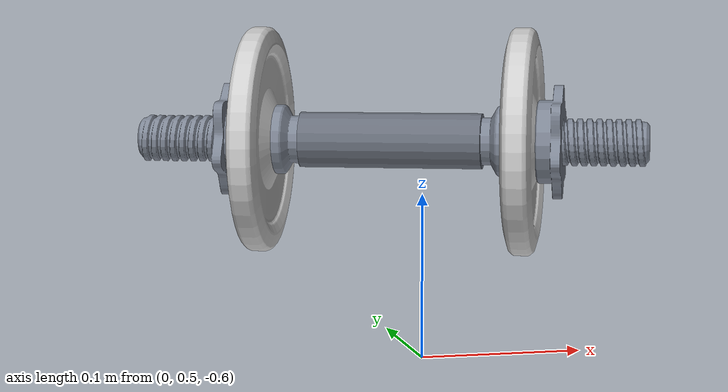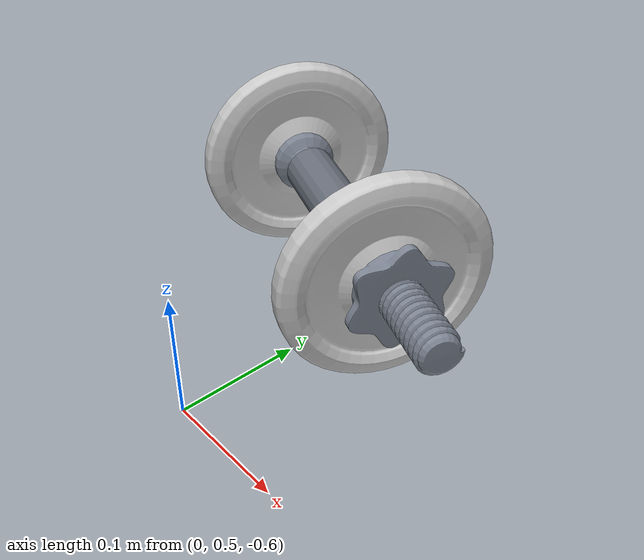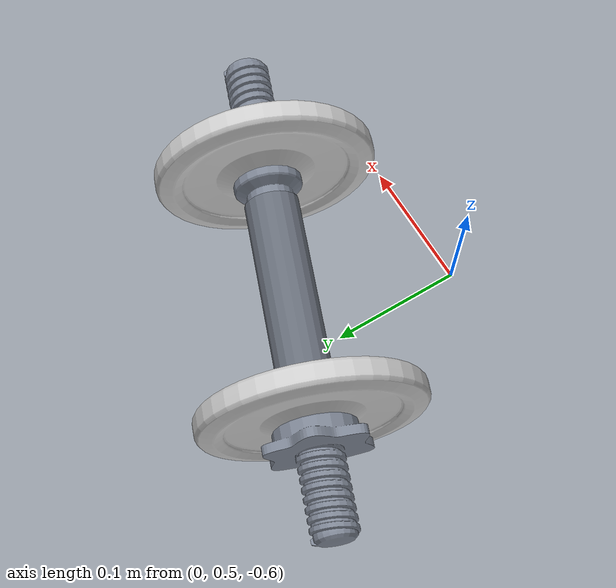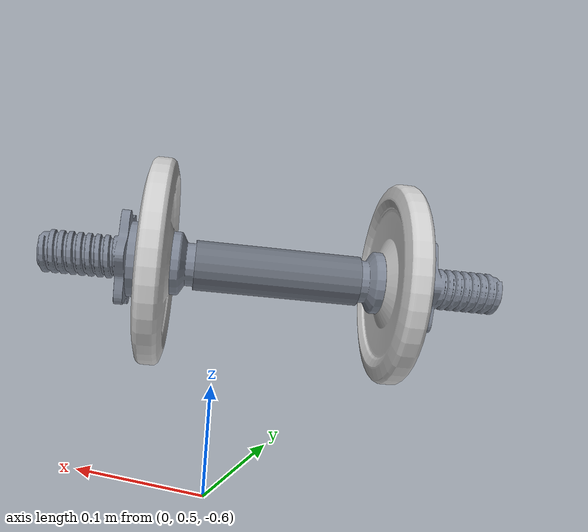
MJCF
<mujoco model="weight_7">
  <compiler angle="radian" meshdir="assets" texturedir="assets" autolimits="true"/>
  <default>
    <default class="visual">
      <geom group="2" type="mesh" contype="0" conaffinity="0"/>
    </default>
    <default class="collision">
      <geom group="3" type="mesh"  solimp="0.95 0.99 0.001" solref="0.004 1" friction="1.0 0.005 0.0001"/>
    </default>
  </default>
  <asset>
    <material name="Metal_black" specular="0.5" shininess="0.36" rgba="0.800000 0.800000 0.800000 1.000000"/>
    <material name="Stainless_Steel" specular="0.5" shininess="0.7225" rgba="0.492784 0.524263 0.580810 1.000000"/>
    <material name="Stainless_Steel_grip" specular="0.5" shininess="0.49" rgba="0.407240 0.433089 0.479510 1.000000"/>
    <mesh file="weight_7_0.obj" scale="0.25 0.25 0.25"/>
    <mesh file="weight_7_1.obj" scale="0.25 0.25 0.25"/>
    <mesh file="weight_7_2.obj" scale="0.25 0.25 0.25"/>
    <mesh file="weight_7_collision_0.obj" scale="0.25 0.25 0.25"/>
    <mesh file="weight_7_collision_1.obj" scale="0.25 0.25 0.25"/>
    <mesh file="weight_7_collision_2.obj" scale="0.25 0.25 0.25"/>
    <mesh file="weight_7_collision_3.obj" scale="0.25 0.25 0.25"/>
    <mesh file="weight_7_collision_4.obj" scale="0.25 0.25 0.25"/>
    <mesh file="weight_7_collision_5.obj" scale="0.25 0.25 0.25"/>
    <mesh file="weight_7_collision_6.obj" scale="0.25 0.25 0.25"/>
    <mesh file="weight_7_collision_7.obj" scale="0.25 0.25 0.25"/>
    <mesh file="weight_7_collision_8.obj" scale="0.25 0.25 0.25"/>
    <mesh file="weight_7_collision_9.obj" scale="0.25 0.25 0.25"/>
    <mesh file="weight_7_collision_10.obj" scale="0.25 0.25 0.25"/>
    <mesh file="weight_7_collision_11.obj" scale="0.25 0.25 0.25"/>
    <mesh file="weight_7_collision_12.obj" scale="0.25 0.25 0.25"/>
    <mesh file="weight_7_collision_13.obj" scale="0.25 0.25 0.25"/>
    <mesh file="weight_7_collision_14.obj" scale="0.25 0.25 0.25"/>
    <mesh file="weight_7_collision_15.obj" scale="0.25 0.25 0.25"/>
    <mesh file="weight_7_collision_16.obj" scale="0.25 0.25 0.25"/>
    <mesh file="weight_7_collision_17.obj" scale="0.25 0.25 0.25"/>
    <mesh file="weight_7_collision_18.obj" scale="0.25 0.25 0.25"/>
    <mesh file="weight_7_collision_19.obj" scale="0.25 0.25 0.25"/>
    <mesh file="weight_7_collision_20.obj" scale="0.25 0.25 0.25"/>
    <mesh file="weight_7_collision_21.obj" scale="0.25 0.25 0.25"/>
    <mesh file="weight_7_collision_22.obj" scale="0.25 0.25 0.25"/>
    <mesh file="weight_7_collision_23.obj" scale="0.25 0.25 0.25"/>
    <mesh file="weight_7_collision_24.obj" scale="0.25 0.25 0.25"/>
    <mesh file="weight_7_collision_25.obj" scale="0.25 0.25 0.25"/>
    <mesh file="weight_7_collision_26.obj" scale="0.25 0.25 0.25"/>
    <mesh file="weight_7_collision_27.obj" scale="0.25 0.25 0.25"/>
    <mesh file="weight_7_collision_28.obj" scale="0.25 0.25 0.25"/>
    <mesh file="weight_7_collision_29.obj" scale="0.25 0.25 0.25"/>
    <mesh file="weight_7_collision_30.obj" scale="0.25 0.25 0.25"/>
    <mesh file="weight_7_collision_31.obj" scale="0.25 0.25 0.25"/>
    <mesh file="weight_7_collision_32.obj" scale="0.25 0.25 0.25"/>
    <mesh file="weight_7_collision_33.obj" scale="0.25 0.25 0.25"/>
    <mesh file="weight_7_collision_34.obj" scale="0.25 0.25 0.25"/>
    <mesh file="weight_7_collision_35.obj" scale="0.25 0.25 0.25"/>
    <mesh file="weight_7_collision_36.obj" scale="0.25 0.25 0.25"/>
    <mesh file="weight_7_collision_37.obj" scale="0.25 0.25 0.25"/>
    <mesh file="weight_7_collision_38.obj" scale="0.25 0.25 0.25"/>
    <mesh file="weight_7_collision_39.obj" scale="0.25 0.25 0.25"/>
    <mesh file="weight_7_collision_40.obj" scale="0.25 0.25 0.25"/>
    <mesh file="weight_7_collision_41.obj" scale="0.25 0.25 0.25"/>
  </asset>
  <worldbody>
    <body name="weight_7">
      <geom mesh="weight_7_0" material="Stainless_Steel_grip" class="visual"/>
      <geom mesh="weight_7_1" material="Metal_black" class="visual"/>
      <geom mesh="weight_7_2" material="Stainless_Steel" class="visual"/>
      <geom mesh="weight_7_collision_0" rgba="0.33760083877503333 0.47996938432586633 0.8769710073501608 1" class="collision"/>
      <geom mesh="weight_7_collision_1" rgba="0.5824314014463475 0.7175859033291031 0.5888330269788696 1" class="collision"/>
      <geom mesh="weight_7_collision_2" rgba="0.41601654633837426 0.6910334671224615 0.4193594012443139 1" class="collision"/>
      <geom mesh="weight_7_collision_3" rgba="0.8001442004704448 0.6801079592471263 0.5402987662338097 1" class="collision"/>
      <geom mesh="weight_7_collision_4" rgba="0.8908125690849676 0.6718294226772528 0.6701821120681427 1" class="collision"/>
      <geom mesh="weight_7_collision_5" rgba="0.8701918750480663 0.4689683402481263 0.5742878138182336 1" class="collision"/>
      <geom mesh="weight_7_collision_6" rgba="0.4232559239128816 0.07002826858448141 0.10742180102804222 1" class="collision"/>
      <geom mesh="weight_7_collision_7" rgba="0.18918436580218445 0.4819256031838196 0.6875313991693764 1" class="collision"/>
      <geom mesh="weight_7_collision_8" rgba="0.5327367781424881 0.9227641935168124 0.6469467770684023 1" class="collision"/>
      <geom mesh="weight_7_collision_9" rgba="0.8782718352712031 0.12671848876752734 0.9195022415599594 1" class="collision"/>
      <geom mesh="weight_7_collision_10" rgba="0.8077363135458098 0.45982196434629774 0.3624056380270547 1" class="collision"/>
      <geom mesh="weight_7_collision_11" rgba="0.17443802100779648 0.10346749504344888 0.03203231524964578 1" class="collision"/>
      <geom mesh="weight_7_collision_12" rgba="0.6954252807056174 0.8104075908988931 0.21857676246584723 1" class="collision"/>
      <geom mesh="weight_7_collision_13" rgba="0.6223373717782135 0.4593017942070764 0.7392686727573963 1" class="collision"/>
      <geom mesh="weight_7_collision_14" rgba="0.3304063501939223 0.6886323980083148 0.8523728875222829 1" class="collision"/>
      <geom mesh="weight_7_collision_15" rgba="0.40140611338820353 0.6739969927436285 0.7665629169681838 1" class="collision"/>
      <geom mesh="weight_7_collision_16" rgba="0.027525162345239162 0.4707448335206579 0.4355144850169075 1" class="collision"/>
      <geom mesh="weight_7_collision_17" rgba="0.4429138499649573 0.29885805497095286 0.8771750920717306 1" class="collision"/>
      <geom mesh="weight_7_collision_18" rgba="0.358693184964439 0.14865930728386267 0.5942777765215331 1" class="collision"/>
      <geom mesh="weight_7_collision_19" rgba="0.32384453645477795 0.29646710340377513 0.027065993678457412 1" class="collision"/>
      <geom mesh="weight_7_collision_20" rgba="0.7116426051324066 0.03369315631148129 0.22335909073776017 1" class="collision"/>
      <geom mesh="weight_7_collision_21" rgba="0.06407977978930679 0.3547681125729455 0.22551216861354906 1" class="collision"/>
      <geom mesh="weight_7_collision_22" rgba="0.01518655205419328 0.9501236172778227 0.05087428645252301 1" class="collision"/>
      <geom mesh="weight_7_collision_23" rgba="0.987528769782738 0.8970391154298667 0.7220795634767745 1" class="collision"/>
      <geom mesh="weight_7_collision_24" rgba="0.48574423794156285 0.018334712472247272 0.7980991077037777 1" class="collision"/>
      <geom mesh="weight_7_collision_25" rgba="0.5167664523964193 0.3773680368695216 0.49551619761837273 1" class="collision"/>
      <geom mesh="weight_7_collision_26" rgba="0.10747596532426895 0.7924000404311218 0.22469081114601008 1" class="collision"/>
      <geom mesh="weight_7_collision_27" rgba="0.7415093016688448 0.6662745336025273 0.13878468903921493 1" class="collision"/>
      <geom mesh="weight_7_collision_28" rgba="0.5459773202623805 0.5645824182389055 0.2098559178078624 1" class="collision"/>
      <geom mesh="weight_7_collision_29" rgba="0.08445744334933503 0.34336881373046435 0.7037293175126309 1" class="collision"/>
      <geom mesh="weight_7_collision_30" rgba="0.568048851096317 0.6807004120666613 0.9717090193885223 1" class="collision"/>
      <geom mesh="weight_7_collision_31" rgba="0.7548522162572507 0.784812132898583 0.28711391204587255 1" class="collision"/>
      <geom mesh="weight_7_collision_32" rgba="0.02538115046240408 0.06176855812739024 0.6162053895075323 1" class="collision"/>
      <geom mesh="weight_7_collision_33" rgba="0.8199704056015089 0.9436664956973947 0.5901661115775473 1" class="collision"/>
      <geom mesh="weight_7_collision_34" rgba="0.9238644776509667 0.2658353133510686 0.01659074501746083 1" class="collision"/>
      <geom mesh="weight_7_collision_35" rgba="0.05385952101304248 0.07391798060804478 0.2081279653992304 1" class="collision"/>
      <geom mesh="weight_7_collision_36" rgba="0.29225361197574584 0.8968016336795379 0.16560393304605425 1" class="collision"/>
      <geom mesh="weight_7_collision_37" rgba="0.9720768282109604 0.22920034084210417 0.8939638413379006 1" class="collision"/>
      <geom mesh="weight_7_collision_38" rgba="0.19437217862140455 0.1328062716234355 0.9152453912160365 1" class="collision"/>
      <geom mesh="weight_7_collision_39" rgba="0.5883905598471603 0.5069497599944419 0.8443308882892128 1" class="collision"/>
      <geom mesh="weight_7_collision_40" rgba="0.928123600754044 0.2754161478337884 0.47348519894831487 1" class="collision"/>
      <geom mesh="weight_7_collision_41" rgba="0.006350192566997537 0.6895530528490097 0.388037925987783 1" class="collision"/>
    </body>
  </worldbody>
</mujoco>
